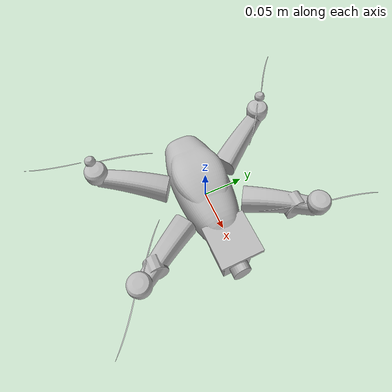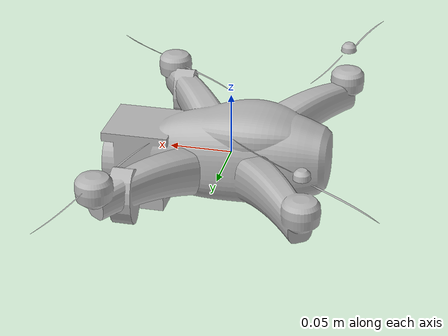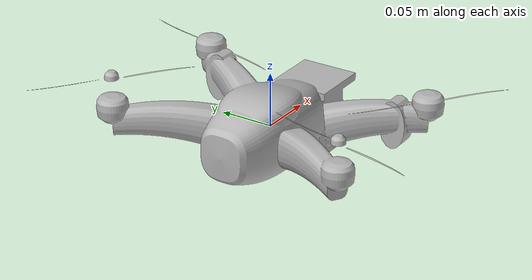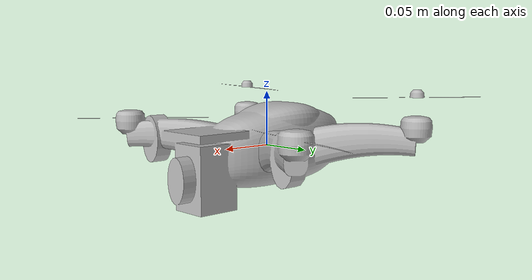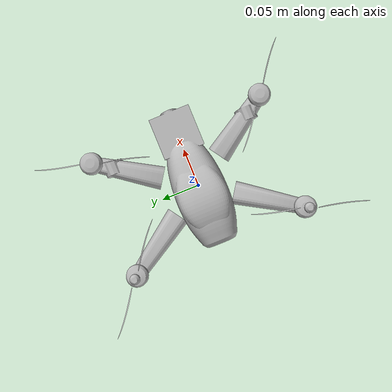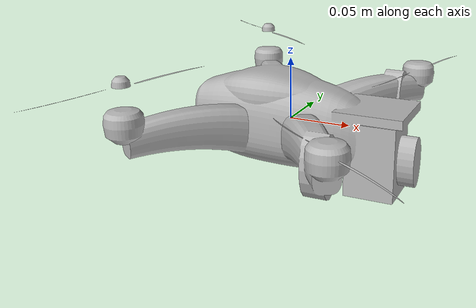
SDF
<?xml version="1.0" ?>
<sdf version="1.9">
  <model name="mini5pro">
    <!-- 자동 생성: src/gazebo_export.py -->
    <!-- 메쉬: src/drone_cad.py (trimesh + manifold3d + shapely + scipy) -->
    <!-- 제원 출처: docs/drone_specs_2026.json (공식 DJI + 적대적 검증) -->
    <!-- ⚠ 질량 분포/관성텐서는 **메쉬에서 계산한 추정치**다. DJI 는 공개하지 않는다. -->
    <!--   총질량만 공식 TOW(250 g)에 맞췄고, 분포는 부위별 밀도가 정했다. -->

    <link name="base_link">
      <pose>0 0 0 0 0 0</pose>
      <inertial>
        <mass>0.249408</mass>
        <pose>0.008358 -0.000000 0.002465 0 0 0</pose>
        <inertia>
          <ixx>0.00074593</ixx> <ixy>0.00000000</ixy> <ixz>0.00006329</ixz>
          <iyy>0.00073099</iyy> <iyz>-0.00000000</iyz> <izz>0.00131302</izz>
        </inertia>
      </inertial>
      <collision name="base_collision">
        <geometry><mesh><uri>model://mini5pro/meshes/base_link_collision.stl</uri></mesh></geometry>
      </collision>
      <visual name="base_visual">
        <geometry><mesh><uri>model://mini5pro/meshes/base_link.stl</uri></mesh></geometry>
      </visual>
    </link>

    <link name="rotor_0">
      <pose>0.076291 0.114394 0.022107 0 0 1.192060</pose>
      <inertial>
        <mass>0.000123</mass>
        <inertia>
          <ixx>0.0000000015</ixx> <ixy>0</ixy> <ixz>0</ixz>
          <iyy>0.0000000069</iyy> <iyz>0</iyz> <izz>0.0000000075</izz>
        </inertia>
      </inertial>
      <collision name="rotor_collision">
        <geometry><mesh><uri>model://mini5pro/meshes/rotor_collision.stl</uri></mesh></geometry>
      </collision>
      <visual name="rotor_visual">
        <geometry><mesh><uri>model://mini5pro/meshes/rotor.stl</uri></mesh></geometry>
      </visual>
    </link>
    <joint name="rotor_0_joint" type="revolute">
      <parent>base_link</parent>
      <child>rotor_0</child>
      <axis><xyz>0 0 1</xyz><limit><lower>-1e16</lower><upper>1e16</upper></limit></axis>
    </joint>
    <plugin filename="gz-sim-multicopter-motor-model-system" name="gz::sim::systems::MulticopterMotorModel">
      <jointName>rotor_0_joint</jointName>
      <linkName>rotor_0</linkName>
      <turningDirection>ccw</turningDirection>
      <timeConstantUp>0.0125</timeConstantUp>
      <timeConstantDown>0.025</timeConstantDown>
      <maxRotVelocity>816.81</maxRotVelocity>
      <motorConstant>1.846904e-06</motorConstant>
      <momentConstant>0.0100</momentConstant>
      <rotorDragCoefficient>8.064280e-05</rotorDragCoefficient>
      <rollingMomentCoefficient>1.0e-06</rollingMomentCoefficient>
      <rotorVelocitySlowdownSim>10</rotorVelocitySlowdownSim>
      <motorNumber>0</motorNumber>
      <commandSubTopic>command/motor_speed</commandSubTopic>
      <motorType>velocity</motorType>
    </plugin>

    <link name="rotor_1">
      <pose>-0.076291 0.114394 0.046744 0 0 2.368412</pose>
      <inertial>
        <mass>0.000123</mass>
        <inertia>
          <ixx>0.0000000015</ixx> <ixy>0</ixy> <ixz>0</ixz>
          <iyy>0.0000000069</iyy> <iyz>0</iyz> <izz>0.0000000075</izz>
        </inertia>
      </inertial>
      <collision name="rotor_collision">
        <geometry><mesh><uri>model://mini5pro/meshes/rotor_collision.stl</uri></mesh></geometry>
      </collision>
      <visual name="rotor_visual">
        <geometry><mesh><uri>model://mini5pro/meshes/rotor.stl</uri></mesh></geometry>
      </visual>
    </link>
    <joint name="rotor_1_joint" type="revolute">
      <parent>base_link</parent>
      <child>rotor_1</child>
      <axis><xyz>0 0 1</xyz><limit><lower>-1e16</lower><upper>1e16</upper></limit></axis>
    </joint>
    <plugin filename="gz-sim-multicopter-motor-model-system" name="gz::sim::systems::MulticopterMotorModel">
      <jointName>rotor_1_joint</jointName>
      <linkName>rotor_1</linkName>
      <turningDirection>cw</turningDirection>
      <timeConstantUp>0.0125</timeConstantUp>
      <timeConstantDown>0.025</timeConstantDown>
      <maxRotVelocity>816.81</maxRotVelocity>
      <motorConstant>1.846904e-06</motorConstant>
      <momentConstant>0.0100</momentConstant>
      <rotorDragCoefficient>8.064280e-05</rotorDragCoefficient>
      <rollingMomentCoefficient>1.0e-06</rollingMomentCoefficient>
      <rotorVelocitySlowdownSim>10</rotorVelocitySlowdownSim>
      <motorNumber>1</motorNumber>
      <commandSubTopic>command/motor_speed</commandSubTopic>
      <motorType>velocity</motorType>
    </plugin>

    <link name="rotor_2">
      <pose>-0.076291 -0.114394 0.046744 0 0 4.333653</pose>
      <inertial>
        <mass>0.000123</mass>
        <inertia>
          <ixx>0.0000000015</ixx> <ixy>0</ixy> <ixz>0</ixz>
          <iyy>0.0000000069</iyy> <iyz>0</iyz> <izz>0.0000000075</izz>
        </inertia>
      </inertial>
      <collision name="rotor_collision">
        <geometry><mesh><uri>model://mini5pro/meshes/rotor_collision.stl</uri></mesh></geometry>
      </collision>
      <visual name="rotor_visual">
        <geometry><mesh><uri>model://mini5pro/meshes/rotor.stl</uri></mesh></geometry>
      </visual>
    </link>
    <joint name="rotor_2_joint" type="revolute">
      <parent>base_link</parent>
      <child>rotor_2</child>
      <axis><xyz>0 0 1</xyz><limit><lower>-1e16</lower><upper>1e16</upper></limit></axis>
    </joint>
    <plugin filename="gz-sim-multicopter-motor-model-system" name="gz::sim::systems::MulticopterMotorModel">
      <jointName>rotor_2_joint</jointName>
      <linkName>rotor_2</linkName>
      <turningDirection>ccw</turningDirection>
      <timeConstantUp>0.0125</timeConstantUp>
      <timeConstantDown>0.025</timeConstantDown>
      <maxRotVelocity>816.81</maxRotVelocity>
      <motorConstant>1.846904e-06</motorConstant>
      <momentConstant>0.0100</momentConstant>
      <rotorDragCoefficient>8.064280e-05</rotorDragCoefficient>
      <rollingMomentCoefficient>1.0e-06</rollingMomentCoefficient>
      <rotorVelocitySlowdownSim>10</rotorVelocitySlowdownSim>
      <motorNumber>2</motorNumber>
      <commandSubTopic>command/motor_speed</commandSubTopic>
      <motorType>velocity</motorType>
    </plugin>

    <link name="rotor_3">
      <pose>0.076291 -0.114394 0.022107 0 0 5.510004</pose>
      <inertial>
        <mass>0.000123</mass>
        <inertia>
          <ixx>0.0000000015</ixx> <ixy>0</ixy> <ixz>0</ixz>
          <iyy>0.0000000069</iyy> <iyz>0</iyz> <izz>0.0000000075</izz>
        </inertia>
      </inertial>
      <collision name="rotor_collision">
        <geometry><mesh><uri>model://mini5pro/meshes/rotor_collision.stl</uri></mesh></geometry>
      </collision>
      <visual name="rotor_visual">
        <geometry><mesh><uri>model://mini5pro/meshes/rotor.stl</uri></mesh></geometry>
      </visual>
    </link>
    <joint name="rotor_3_joint" type="revolute">
      <parent>base_link</parent>
      <child>rotor_3</child>
      <axis><xyz>0 0 1</xyz><limit><lower>-1e16</lower><upper>1e16</upper></limit></axis>
    </joint>
    <plugin filename="gz-sim-multicopter-motor-model-system" name="gz::sim::systems::MulticopterMotorModel">
      <jointName>rotor_3_joint</jointName>
      <linkName>rotor_3</linkName>
      <turningDirection>cw</turningDirection>
      <timeConstantUp>0.0125</timeConstantUp>
      <timeConstantDown>0.025</timeConstantDown>
      <maxRotVelocity>816.81</maxRotVelocity>
      <motorConstant>1.846904e-06</motorConstant>
      <momentConstant>0.0100</momentConstant>
      <rotorDragCoefficient>8.064280e-05</rotorDragCoefficient>
      <rollingMomentCoefficient>1.0e-06</rollingMomentCoefficient>
      <rotorVelocitySlowdownSim>10</rotorVelocitySlowdownSim>
      <motorNumber>3</motorNumber>
      <commandSubTopic>command/motor_speed</commandSubTopic>
      <motorType>velocity</motorType>
    </plugin>

  </model>
</sdf>
